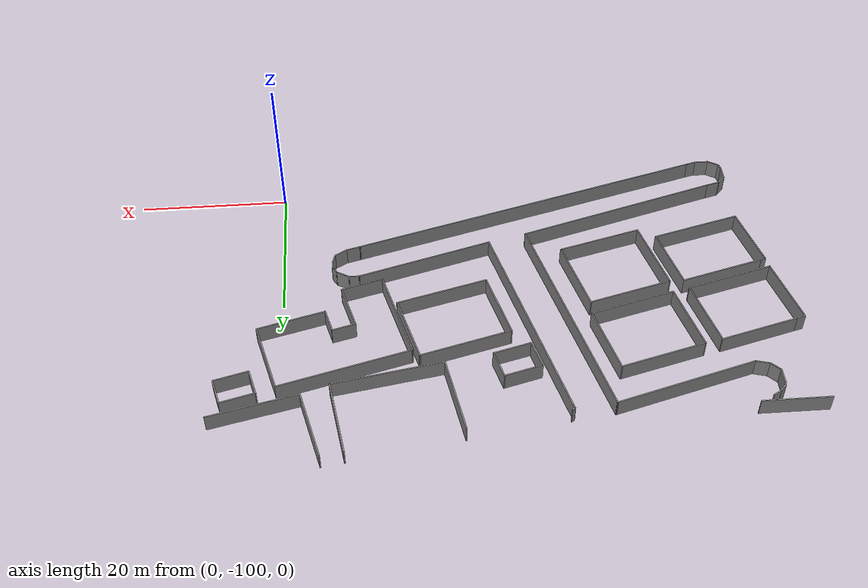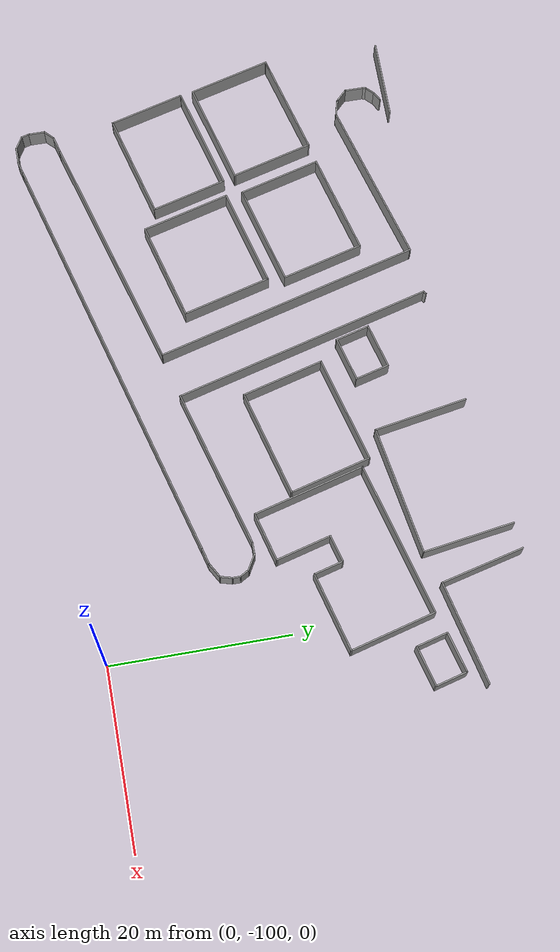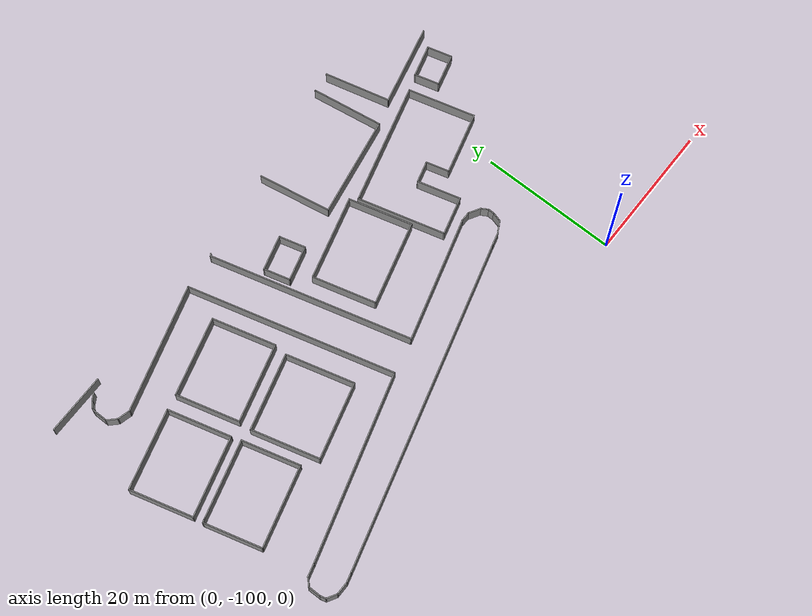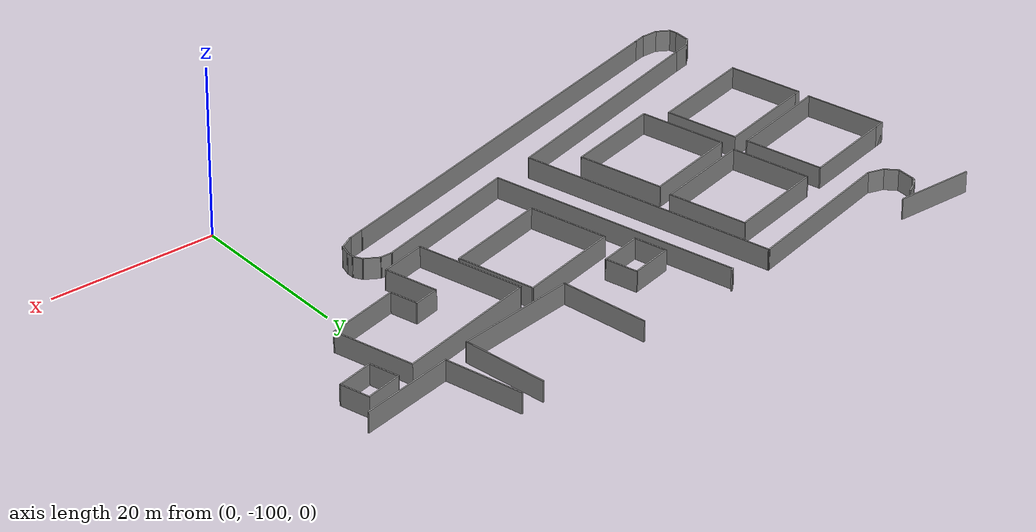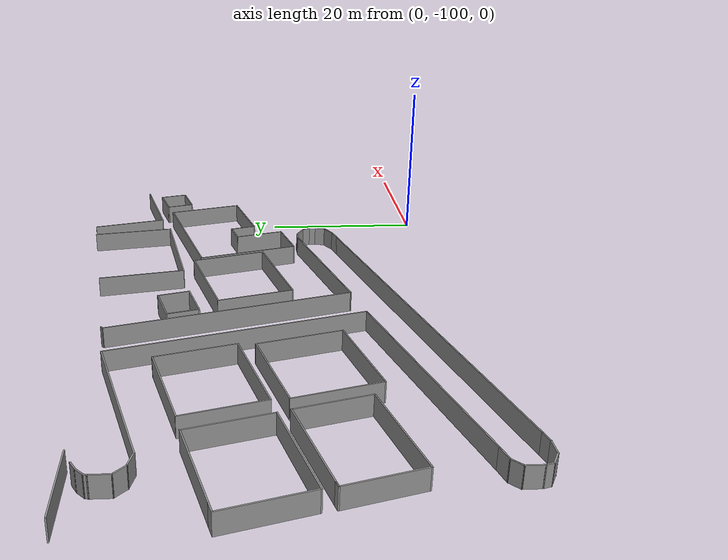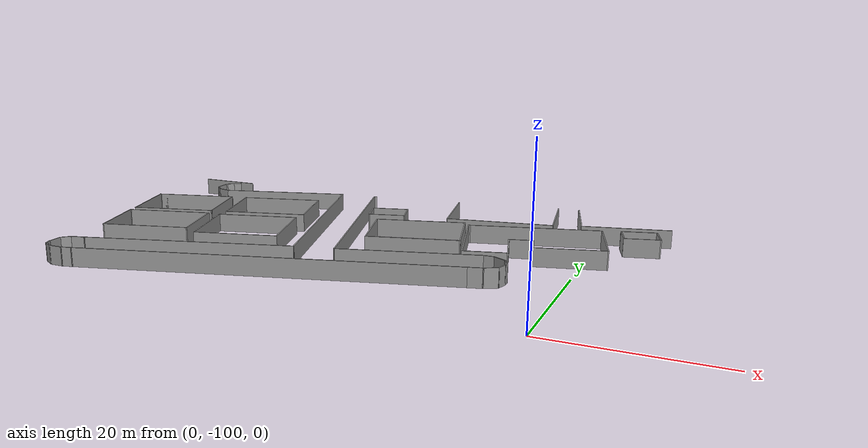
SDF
<sdf version="1.6">
 <model name="palazzo2">
  <pose>-3.81107 -3.99805 0 0 -0 0</pose>
  <link name="Wall_281">
   <collision name="Wall_281_Collision">
    <geometry><box><size>1.25 0.15 2.5</size></box></geometry>
    <pose>0 0 1.25 0 -0 0</pose>
   </collision>
   <visual name="Wall_281_Visual">
    <pose>0 0 1.25 0 -0 0</pose>
    <geometry><box><size>1.25 0.15 2.5</size></box></geometry>
    <material>
     <script><uri>file://media/materials/scripts/gazebo.material</uri><name>Gazebo/Grey</name></script>
     <ambient>1 1 1 1</ambient>
    </material>
    <meta><layer>0</layer></meta>
   </visual>
   <pose>-56.9081 -55.3846 0 0 -0 -2.61799</pose>
  </link>
  <link name="Wall_285">
   <collision name="Wall_285_Collision">
    <geometry><box><size>1.25 0.15 2.5</size></box></geometry>
    <pose>0 0 1.25 0 -0 0</pose>
   </collision>
   <visual name="Wall_285_Visual">
    <pose>0 0 1.25 0 -0 0</pose>
    <geometry><box><size>1.25 0.15 2.5</size></box></geometry>
    <material>
     <script><uri>file://media/materials/scripts/gazebo.material</uri><name>Gazebo/Grey</name></script>
     <ambient>1 1 1 1</ambient>
    </material>
    <meta><layer>0</layer></meta>
   </visual>
   <pose>-57.7733 -56.0485 0 0 -0 -2.35619</pose>
  </link>
  <link name="Wall_286">
   <collision name="Wall_286_Collision">
    <geometry><box><size>0.5 0.15 2.5</size></box></geometry>
    <pose>0 0 1.25 0 -0 0</pose>
   </collision>
   <visual name="Wall_286_Visual">
    <pose>0 0 1.25 0 -0 0</pose>
    <geometry><box><size>0.5 0.15 2.5</size></box></geometry>
    <material>
     <script><uri>file://media/materials/scripts/gazebo.material</uri><name>Gazebo/Grey</name></script>
     <ambient>1 1 1 1</ambient>
    </material>
    <meta><layer>0</layer></meta>
   </visual>
   <pose>-58.2075 -56.6064 0 0 -0 -1.8326</pose>
  </link>
  <link name="Wall_287">
   <collision name="Wall_287_Collision">
    <geometry><box><size>2.25 0.15 2.5</size></box></geometry>
    <pose>0 0 1.25 0 -0 0</pose>
   </collision>
   <visual name="Wall_287_Visual">
    <pose>0 0 1.25 0 -0 0</pose>
    <geometry><box><size>2.25 0.15 2.5</size></box></geometry>
    <material>
     <script><uri>file://media/materials/scripts/gazebo.material</uri><name>Gazebo/Grey</name></script>
     <ambient>1 1 1 1</ambient>
    </material>
    <meta><layer>0</layer></meta>
   </visual>
   <pose>-58.2528 -57.8255 0 0 -0 -1.5708</pose>
  </link>
  <link name="Wall_288">
   <collision name="Wall_288_Collision">
    <geometry><box><size>1.75 0.15 2.5</size></box></geometry>
    <pose>0 0 1.25 0 -0 0</pose>
   </collision>
   <visual name="Wall_288_Visual">
    <pose>0 0 1.25 0 -0 0</pose>
    <geometry><box><size>1.75 0.15 2.5</size></box></geometry>
    <material>
     <script><uri>file://media/materials/scripts/gazebo.material</uri><name>Gazebo/Grey</name></script>
     <ambient>1 1 1 1</ambient>
    </material>
    <meta><layer>0</layer></meta>
   </visual>
   <pose>-57.6871 -59.4412 0 0 -0 -0.785398</pose>
  </link>
  <link name="Wall_289">
   <collision name="Wall_289_Collision">
    <geometry><box><size>2 0.15 2.5</size></box></geometry>
    <pose>0 0 1.25 0 -0 0</pose>
   </collision>
   <visual name="Wall_289_Visual">
    <pose>0 0 1.25 0 -0 0</pose>
    <geometry><box><size>2 0.15 2.5</size></box></geometry>
    <material>
     <script><uri>file://media/materials/scripts/gazebo.material</uri><name>Gazebo/Grey</name></script>
     <ambient>1 1 1 1</ambient>
    </material>
    <meta><layer>0</layer></meta>
   </visual>
   <pose>-56.2279 -60.2463 0 0 -0 -0.261799</pose>
  </link>
  <link name="Wall_291">
   <collision name="Wall_291_Collision">
    <geometry><box><size>19.0767 0.15 2.5</size></box></geometry>
    <pose>0 0 1.25 0 -0 0</pose>
   </collision>
   <visual name="Wall_291_Visual">
    <pose>0 0 1.25 0 -0 0</pose>
    <geometry><box><size>19.0767 0.15 2.5</size></box></geometry>
    <material>
     <script><uri>file://media/materials/scripts/gazebo.material</uri><name>Gazebo/Grey</name></script>
     <ambient>1 1 1 1</ambient>
    </material>
    <meta><layer>0</layer></meta>
   </visual>
   <pose>-46.2271 -57.9145 0 0 -0 -2.86644</pose>
  </link>
  <link name="Wall_296">
   <collision name="Wall_296_Collision">
    <geometry><box><size>30.7325 0.15 2.5</size></box></geometry>
    <pose>0 0 1.25 0 -0 0</pose>
   </collision>
   <visual name="Wall_296_Visual">
    <pose>0 0 1.25 0 -0 0</pose>
    <geometry><box><size>30.7325 0.15 2.5</size></box></geometry>
    <material>
     <script><uri>file://media/materials/scripts/gazebo.material</uri><name>Gazebo/Grey</name></script>
     <ambient>1 1 1 1</ambient>
    </material>
    <meta><layer>0</layer></meta>
   </visual>
   <pose>-33.1704 -70.1158 0 0 -0 1.83203</pose>
  </link>
  <link name="Wall_298">
   <collision name="Wall_298_Collision">
    <geometry><box><size>30 0.15 2.5</size></box></geometry>
    <pose>0 0 1.25 0 -0 0</pose>
   </collision>
   <visual name="Wall_298_Visual">
    <pose>0 0 1.25 0 -0 0</pose>
    <geometry><box><size>30 0.15 2.5</size></box></geometry>
    <material>
     <script><uri>file://media/materials/scripts/gazebo.material</uri><name>Gazebo/Grey</name></script>
     <ambient>1 1 1 1</ambient>
    </material>
    <meta><layer>0</layer></meta>
   </visual>
   <pose>-27.9598 -69.2673 0 0 -0 1.8326</pose>
  </link>
  <link name="Wall_301">
   <collision name="Wall_301_Collision">
    <geometry><box><size>0.504493 0.15 2.5</size></box></geometry>
    <pose>0 0 1.25 0 -0 0</pose>
   </collision>
   <visual name="Wall_301_Visual">
    <pose>0 0 1.25 0 -0 0</pose>
    <geometry><box><size>0.504493 0.15 2.5</size></box></geometry>
    <material>
     <script><uri>file://media/materials/scripts/gazebo.material</uri><name>Gazebo/Grey</name></script>
     <ambient>1 1 1 1</ambient>
    </material>
    <meta><layer>0</layer></meta>
   </visual>
   <pose>-31.679 -54.747 0 0 -0 0.625919</pose>
  </link>
  <link name="Wall_303">
   <collision name="Wall_303_Collision">
    <geometry><box><size>18.6137 0.15 2.5</size></box></geometry>
    <pose>0 0 1.25 0 -0 0</pose>
   </collision>
   <visual name="Wall_303_Visual">
    <pose>0 0 1.25 0 -0 0</pose>
    <geometry><box><size>18.6137 0.15 2.5</size></box></geometry>
    <material>
     <script><uri>file://media/materials/scripts/gazebo.material</uri><name>Gazebo/Grey</name></script>
     <ambient>1 1 1 1</ambient>
    </material>
    <meta><layer>0</layer></meta>
   </visual>
   <pose>-15.215 -81.1661 0 0 -0 -2.86537</pose>
  </link>
  <link name="Wall_305">
   <collision name="Wall_305_Collision">
    <geometry><box><size>1.5 0.15 2.5</size></box></geometry>
    <pose>0 0 1.25 0 -0 0</pose>
   </collision>
   <visual name="Wall_305_Visual">
    <pose>0 0 1.25 0 -0 0</pose>
    <geometry><box><size>1.5 0.15 2.5</size></box></geometry>
    <material>
     <script><uri>file://media/materials/scripts/gazebo.material</uri><name>Gazebo/Grey</name></script>
     <ambient>1 1 1 1</ambient>
    </material>
    <meta><layer>0</layer></meta>
   </visual>
   <pose>-5.65811 -78.6484 0 0 -0 0</pose>
  </link>
  <link name="Wall_306">
   <collision name="Wall_306_Collision">
    <geometry><box><size>2 0.15 2.5</size></box></geometry>
    <pose>0 0 1.25 0 -0 0</pose>
   </collision>
   <visual name="Wall_306_Visual">
    <pose>0 0 1.25 0 -0 0</pose>
    <geometry><box><size>2 0.15 2.5</size></box></geometry>
    <material>
     <script><uri>file://media/materials/scripts/gazebo.material</uri><name>Gazebo/Grey</name></script>
     <ambient>1 1 1 1</ambient>
    </material>
    <meta><layer>0</layer></meta>
   </visual>
   <pose>-4.18204 -79.1109 0 0 -0 -0.523599</pose>
  </link>
  <link name="Wall_307">
   <collision name="Wall_307_Collision">
    <geometry><box><size>1.25 0.15 2.5</size></box></geometry>
    <pose>0 0 1.25 0 -0 0</pose>
   </collision>
   <visual name="Wall_307_Visual">
    <pose>0 0 1.25 0 -0 0</pose>
    <geometry><box><size>1.25 0.15 2.5</size></box></geometry>
    <material>
     <script><uri>file://media/materials/scripts/gazebo.material</uri><name>Gazebo/Grey</name></script>
     <ambient>1 1 1 1</ambient>
    </material>
    <meta><layer>0</layer></meta>
   </visual>
   <pose>-3.10596 -80.0497 0 0 -0 -1.0472</pose>
  </link>
  <link name="Wall_308">
   <collision name="Wall_308_Collision">
    <geometry><box><size>1 0.15 2.5</size></box></geometry>
    <pose>0 0 1.25 0 -0 0</pose>
   </collision>
   <visual name="Wall_308_Visual">
    <pose>0 0 1.25 0 -0 0</pose>
    <geometry><box><size>1 0.15 2.5</size></box></geometry>
    <material>
     <script><uri>file://media/materials/scripts/gazebo.material</uri><name>Gazebo/Grey</name></script>
     <ambient>1 1 1 1</ambient>
    </material>
    <meta><layer>0</layer></meta>
   </visual>
   <pose>-2.83096 -80.951 0 0 -0 -1.5708</pose>
  </link>
  <link name="Wall_309">
   <collision name="Wall_309_Collision">
    <geometry><box><size>1.5 0.15 2.5</size></box></geometry>
    <pose>0 0 1.25 0 -0 0</pose>
   </collision>
   <visual name="Wall_309_Visual">
    <pose>0 0 1.25 0 -0 0</pose>
    <geometry><box><size>1.5 0.15 2.5</size></box></geometry>
    <material>
     <script><uri>file://media/materials/scripts/gazebo.material</uri><name>Gazebo/Grey</name></script>
     <ambient>1 1 1 1</ambient>
    </material>
    <meta><layer>0</layer></meta>
   </visual>
   <pose>-3.00567 -82.028 0 0 -0 -1.8326</pose>
  </link>
  <link name="Wall_310">
   <collision name="Wall_310_Collision">
    <geometry><box><size>2 0.15 2.5</size></box></geometry>
    <pose>0 0 1.25 0 -0 0</pose>
   </collision>
   <visual name="Wall_310_Visual">
    <pose>0 0 1.25 0 -0 0</pose>
    <geometry><box><size>2 0.15 2.5</size></box></geometry>
    <material>
     <script><uri>file://media/materials/scripts/gazebo.material</uri><name>Gazebo/Grey</name></script>
     <ambient>1 1 1 1</ambient>
    </material>
    <meta><layer>0</layer></meta>
   </visual>
   <pose>-3.98144 -83.1425 0 0 -0 -2.61799</pose>
  </link>
  <link name="Wall_311">
   <collision name="Wall_311_Collision">
    <geometry><box><size>2 0.15 2.5</size></box></geometry>
    <pose>0 0 1.25 0 -0 0</pose>
   </collision>
   <visual name="Wall_311_Visual">
    <pose>0 0 1.25 0 -0 0</pose>
    <geometry><box><size>2 0.15 2.5</size></box></geometry>
    <material>
     <script><uri>file://media/materials/scripts/gazebo.material</uri><name>Gazebo/Grey</name></script>
     <ambient>1 1 1 1</ambient>
    </material>
    <meta><layer>0</layer></meta>
   </visual>
   <pose>-5.676 -83.8444 0 0 -0 -2.87979</pose>
  </link>
  <link name="Wall_313">
   <collision name="Wall_313_Collision">
    <geometry><box><size>49.427 0.15 2.5</size></box></geometry>
    <pose>0 0 1.25 0 -0 0</pose>
   </collision>
   <visual name="Wall_313_Visual">
    <pose>0 0 1.25 0 -0 0</pose>
    <geometry><box><size>49.427 0.15 2.5</size></box></geometry>
    <material>
     <script><uri>file://media/materials/scripts/gazebo.material</uri><name>Gazebo/Grey</name></script>
     <ambient>1 1 1 1</ambient>
    </material>
    <meta><layer>0</layer></meta>
   </visual>
   <pose>-30.3088 -90.6791 0 0 -0 0.270986</pose>
  </link>
  <link name="Wall_315">
   <collision name="Wall_315_Collision">
    <geometry><box><size>1.5 0.15 2.5</size></box></geometry>
    <pose>0 0 1.25 0 -0 0</pose>
   </collision>
   <visual name="Wall_315_Visual">
    <pose>0 0 1.25 0 -0 0</pose>
    <geometry><box><size>1.5 0.15 2.5</size></box></geometry>
    <material>
     <script><uri>file://media/materials/scripts/gazebo.material</uri><name>Gazebo/Grey</name></script>
     <ambient>1 1 1 1</ambient>
    </material>
    <meta><layer>0</layer></meta>
   </visual>
   <pose>-54.7002 -97.449 0 0 -0 -2.87979</pose>
  </link>
  <link name="Wall_316">
   <collision name="Wall_316_Collision">
    <geometry><box><size>2 0.15 2.5</size></box></geometry>
    <pose>0 0 1.25 0 -0 0</pose>
   </collision>
   <visual name="Wall_316_Visual">
    <pose>0 0 1.25 0 -0 0</pose>
    <geometry><box><size>2 0.15 2.5</size></box></geometry>
    <material>
     <script><uri>file://media/materials/scripts/gazebo.material</uri><name>Gazebo/Grey</name></script>
     <ambient>1 1 1 1</ambient>
    </material>
    <meta><layer>0</layer></meta>
   </visual>
   <pose>-56.2772 -97.6237 0 0 -0 3.14159</pose>
  </link>
  <link name="Wall_317">
   <collision name="Wall_317_Collision">
    <geometry><box><size>1.75 0.15 2.5</size></box></geometry>
    <pose>0 0 1.25 0 -0 0</pose>
   </collision>
   <visual name="Wall_317_Visual">
    <pose>0 0 1.25 0 -0 0</pose>
    <geometry><box><size>1.75 0.15 2.5</size></box></geometry>
    <material>
     <script><uri>file://media/materials/scripts/gazebo.material</uri><name>Gazebo/Grey</name></script>
     <ambient>1 1 1 1</ambient>
    </material>
    <meta><layer>0</layer></meta>
   </visual>
   <pose>-57.895 -97.2237 0 0 -0 2.61799</pose>
  </link>
  <link name="Wall_318">
   <collision name="Wall_318_Collision">
    <geometry><box><size>1 0.15 2.5</size></box></geometry>
    <pose>0 0 1.25 0 -0 0</pose>
   </collision>
   <visual name="Wall_318_Visual">
    <pose>0 0 1.25 0 -0 0</pose>
    <geometry><box><size>1 0.15 2.5</size></box></geometry>
    <material>
     <script><uri>file://media/materials/scripts/gazebo.material</uri><name>Gazebo/Grey</name></script>
     <ambient>1 1 1 1</ambient>
    </material>
    <meta><layer>0</layer></meta>
   </visual>
   <pose>-58.6978 -96.4132 0 0 -0 1.8326</pose>
  </link>
  <link name="Wall_319">
   <collision name="Wall_319_Collision">
    <geometry><box><size>2 0.15 2.5</size></box></geometry>
    <pose>0 0 1.25 0 -0 0</pose>
   </collision>
   <visual name="Wall_319_Visual">
    <pose>0 0 1.25 0 -0 0</pose>
    <geometry><box><size>2 0.15 2.5</size></box></geometry>
    <material>
     <script><uri>file://media/materials/scripts/gazebo.material</uri><name>Gazebo/Grey</name></script>
     <ambient>1 1 1 1</ambient>
    </material>
    <meta><layer>0</layer></meta>
   </visual>
   <pose>-58.8078 -95.0777 0 0 -0 1.5708</pose>
  </link>
  <link name="Wall_320">
   <collision name="Wall_320_Collision">
    <geometry><box><size>1.5 0.15 2.5</size></box></geometry>
    <pose>0 0 1.25 0 -0 0</pose>
   </collision>
   <visual name="Wall_320_Visual">
    <pose>0 0 1.25 0 -0 0</pose>
    <geometry><box><size>1.5 0.15 2.5</size></box></geometry>
    <material>
     <script><uri>file://media/materials/scripts/gazebo.material</uri><name>Gazebo/Grey</name></script>
     <ambient>1 1 1 1</ambient>
    </material>
    <meta><layer>0</layer></meta>
   </visual>
   <pose>-58.3305 -93.6754 0 0 -0 0.785398</pose>
  </link>
  <link name="Wall_321">
   <collision name="Wall_321_Collision">
    <geometry><box><size>2 0.15 2.5</size></box></geometry>
    <pose>0 0 1.25 0 -0 0</pose>
   </collision>
   <visual name="Wall_321_Visual">
    <pose>0 0 1.25 0 -0 0</pose>
    <geometry><box><size>2 0.15 2.5</size></box></geometry>
    <material>
     <script><uri>file://media/materials/scripts/gazebo.material</uri><name>Gazebo/Grey</name></script>
     <ambient>1 1 1 1</ambient>
    </material>
    <meta><layer>0</layer></meta>
   </visual>
   <pose>-56.9598 -92.9587 0 0 -0 0.261799</pose>
  </link>
  <link name="Wall_323">
   <collision name="Wall_323_Collision">
    <geometry><box><size>28.114 0.15 2.5</size></box></geometry>
    <pose>0 0 1.25 0 -0 0</pose>
   </collision>
   <visual name="Wall_323_Visual">
    <pose>0 0 1.25 0 -0 0</pose>
    <geometry><box><size>28.114 0.15 2.5</size></box></geometry>
    <material>
     <script><uri>file://media/materials/scripts/gazebo.material</uri><name>Gazebo/Grey</name></script>
     <ambient>1 1 1 1</ambient>
    </material>
    <meta><layer>0</layer></meta>
   </visual>
   <pose>-42.6437 -88.8037 0 0 -0 -2.85776</pose>
  </link>
  <link name="Wall_707">
   <collision name="Wall_707_Collision">
    <geometry><box><size>9 0.15 2.5</size></box></geometry>
    <pose>0 0 1.25 0 -0 0</pose>
   </collision>
   <visual name="Wall_707_Visual">
    <pose>0 0 1.25 0 -0 0</pose>
    <geometry><box><size>9 0.15 2.5</size></box></geometry>
    <material>
     <script><uri>file://media/materials/scripts/gazebo.material</uri><name>Gazebo/Grey</name></script>
     <ambient>1 1 1 1</ambient>
    </material>
    <meta><layer>0</layer></meta>
   </visual>
   <pose>-59.0934 -54.2813 0 0 -0 3.14159</pose>
  </link>
  <link name="Wall_713">
   <collision name="Wall_713_Collision">
    <geometry><box><size>5.25 0.15 2.5</size></box></geometry>
    <pose>0 0 1.25 0 -0 0</pose>
   </collision>
   <visual name="Wall_713_Visual">
    <pose>0 0 1.25 0 -0 0</pose>
    <geometry><box><size>5.25 0.15 2.5</size></box></geometry>
    <material>
     <script><uri>file://media/materials/scripts/gazebo.material</uri><name>Gazebo/Grey</name></script>
     <ambient>1 1 1 1</ambient>
    </material>
    <meta><layer>0</layer></meta>
   </visual>
   <pose>-26.2767 -61.1174 0 0 -0 0.261799</pose>
  </link>
  <link name="Wall_714">
   <collision name="Wall_714_Collision">
    <geometry><box><size>4 0.15 2.5</size></box></geometry>
    <pose>0 0 1.25 0 -0 0</pose>
   </collision>
   <visual name="Wall_714_Visual">
    <pose>0 0 1.25 0 -0 0</pose>
    <geometry><box><size>4 0.15 2.5</size></box></geometry>
    <material>
     <script><uri>file://media/materials/scripts/gazebo.material</uri><name>Gazebo/Grey</name></script>
     <ambient>1 1 1 1</ambient>
    </material>
    <meta><layer>0</layer></meta>
   </visual>
   <pose>-23.3153 -62.3168 0 0 -0 -1.309</pose>
  </link>
  <link name="Wall_715">
   <collision name="Wall_715_Collision">
    <geometry><box><size>5.25 0.15 2.5</size></box></geometry>
    <pose>0 0 1.25 0 -0 0</pose>
   </collision>
   <visual name="Wall_715_Visual">
    <pose>0 0 1.25 0 -0 0</pose>
    <geometry><box><size>5.25 0.15 2.5</size></box></geometry>
    <material>
     <script><uri>file://media/materials/scripts/gazebo.material</uri><name>Gazebo/Grey</name></script>
     <ambient>1 1 1 1</ambient>
    </material>
    <meta><layer>0</layer></meta>
   </visual>
   <pose>-25.2802 -64.8362 0 0 -0 -2.87979</pose>
  </link>
  <link name="Wall_716">
   <collision name="Wall_716_Collision">
    <geometry><box><size>4 0.15 2.5</size></box></geometry>
    <pose>0 0 1.25 0 -0 0</pose>
   </collision>
   <visual name="Wall_716_Visual">
    <pose>0 0 1.25 0 -0 0</pose>
    <geometry><box><size>4 0.15 2.5</size></box></geometry>
    <material>
     <script><uri>file://media/materials/scripts/gazebo.material</uri><name>Gazebo/Grey</name></script>
     <ambient>1 1 1 1</ambient>
    </material>
    <meta><layer>0</layer></meta>
   </visual>
   <pose>-28.2415 -63.6368 0 0 -0 1.8326</pose>
  </link>
  <link name="Wall_723">
   <collision name="Wall_723_Collision">
    <geometry><box><size>10.7148 0.15 2.5</size></box></geometry>
    <pose>0 0 1.25 0 -0 0</pose>
   </collision>
   <visual name="Wall_723_Visual">
    <pose>0 0 1.25 0 -0 0</pose>
    <geometry><box><size>10.7148 0.15 2.5</size></box></geometry>
    <material>
     <script><uri>file://media/materials/scripts/gazebo.material</uri><name>Gazebo/Grey</name></script>
     <ambient>1 1 1 1</ambient>
    </material>
    <meta><layer>0</layer></meta>
   </visual>
   <pose>-17.547 -58.0245 0 0 -0 1.74619</pose>
  </link>
  <link name="Wall_725">
   <collision name="Wall_725_Collision">
    <geometry><box><size>10.4638 0.15 2.5</size></box></geometry>
    <pose>0 0 1.25 0 -0 0</pose>
   </collision>
   <visual name="Wall_725_Visual">
    <pose>0 0 1.25 0 -0 0</pose>
    <geometry><box><size>10.4638 0.15 2.5</size></box></geometry>
    <material>
     <script><uri>file://media/materials/scripts/gazebo.material</uri><name>Gazebo/Grey</name></script>
     <ambient>1 1 1 1</ambient>
    </material>
    <meta><layer>0</layer></meta>
   </visual>
   <pose>-2.98318 -55.6542 0 0 -0 1.72461</pose>
  </link>
  <link name="Wall_727">
   <collision name="Wall_727_Collision">
    <geometry><box><size>14.7929 0.15 2.5</size></box></geometry>
    <pose>0 0 1.25 0 -0 0</pose>
   </collision>
   <visual name="Wall_727_Visual">
    <pose>0 0 1.25 0 -0 0</pose>
    <geometry><box><size>14.7929 0.15 2.5</size></box></geometry>
    <material>
     <script><uri>file://media/materials/scripts/gazebo.material</uri><name>Gazebo/Grey</name></script>
     <ambient>1 1 1 1</ambient>
    </material>
    <meta><layer>0</layer></meta>
   </visual>
   <pose>-9.40916 -61.988 0 0 -0 0.16988</pose>
  </link>
  <link name="Wall_733">
   <collision name="Wall_733_Collision">
    <geometry><box><size>9.67365 0.15 2.5</size></box></geometry>
    <pose>0 0 1.25 0 -0 0</pose>
   </collision>
   <visual name="Wall_733_Visual">
    <pose>0 0 1.25 0 -0 0</pose>
    <geometry><box><size>9.67365 0.15 2.5</size></box></geometry>
    <material>
     <script><uri>file://media/materials/scripts/gazebo.material</uri><name>Gazebo/Grey</name></script>
     <ambient>1 1 1 1</ambient>
    </material>
    <meta><layer>0</layer></meta>
   </visual>
   <pose>0.295652 -54.8378 0 0 -0 1.81376</pose>
  </link>
  <link name="Wall_737">
   <collision name="Wall_737_Collision">
    <geometry><box><size>11.9169 0.15 2.5</size></box></geometry>
    <pose>0 0 1.25 0 -0 0</pose>
   </collision>
   <visual name="Wall_737_Visual">
    <pose>0 0 1.25 0 -0 0</pose>
    <geometry><box><size>11.9169 0.15 2.5</size></box></geometry>
    <material>
     <script><uri>file://media/materials/scripts/gazebo.material</uri><name>Gazebo/Grey</name></script>
     <ambient>1 1 1 1</ambient>
    </material>
    <meta><layer>0</layer></meta>
   </visual>
   <pose>7.16934 -58.1167 0 0 -0 0.230322</pose>
  </link>
  <link name="Wall_739">
   <collision name="Wall_739_Collision">
    <geometry><box><size>4.75 0.15 2.5</size></box></geometry>
    <pose>0 0 1.25 0 -0 0</pose>
   </collision>
   <visual name="Wall_739_Visual">
    <pose>0 0 1.25 0 -0 0</pose>
    <geometry><box><size>4.75 0.15 2.5</size></box></geometry>
    <material>
     <script><uri>file://media/materials/scripts/gazebo.material</uri><name>Gazebo/Grey</name></script>
     <ambient>1 1 1 1</ambient>
    </material>
    <meta><layer>0</layer></meta>
   </visual>
   <pose>9.06177 -59.4176 0 0 -0 0.261799</pose>
  </link>
  <link name="Wall_740">
   <collision name="Wall_740_Collision">
    <geometry><box><size>3.75 0.15 2.5</size></box></geometry>
    <pose>0 0 1.25 0 -0 0</pose>
   </collision>
   <visual name="Wall_740_Visual">
    <pose>0 0 1.25 0 -0 0</pose>
    <geometry><box><size>3.75 0.15 2.5</size></box></geometry>
    <material>
     <script><uri>file://media/materials/scripts/gazebo.material</uri><name>Gazebo/Grey</name></script>
     <ambient>1 1 1 1</ambient>
    </material>
    <meta><layer>0</layer></meta>
   </visual>
   <pose>11.7493 -60.561 0 0 -0 -1.309</pose>
  </link>
  <link name="Wall_741">
   <collision name="Wall_741_Collision">
    <geometry><box><size>4.75 0.15 2.5</size></box></geometry>
    <pose>0 0 1.25 0 -0 0</pose>
   </collision>
   <visual name="Wall_741_Visual">
    <pose>0 0 1.25 0 -0 0</pose>
    <geometry><box><size>4.75 0.15 2.5</size></box></geometry>
    <material>
     <script><uri>file://media/materials/scripts/gazebo.material</uri><name>Gazebo/Grey</name></script>
     <ambient>1 1 1 1</ambient>
    </material>
    <meta><layer>0</layer></meta>
   </visual>
   <pose>9.99352 -62.8949 0 0 -0 -2.87979</pose>
  </link>
  <link name="Wall_742">
   <collision name="Wall_742_Collision">
    <geometry><box><size>3.75 0.15 2.5</size></box></geometry>
    <pose>0 0 1.25 0 -0 0</pose>
   </collision>
   <visual name="Wall_742_Visual">
    <pose>0 0 1.25 0 -0 0</pose>
    <geometry><box><size>3.75 0.15 2.5</size></box></geometry>
    <material>
     <script><uri>file://media/materials/scripts/gazebo.material</uri><name>Gazebo/Grey</name></script>
     <ambient>1 1 1 1</ambient>
    </material>
    <meta><layer>0</layer></meta>
   </visual>
   <pose>7.30602 -61.7515 0 0 -0 1.8326</pose>
  </link>
  <link name="Wall_744">
   <collision name="Wall_744_Collision">
    <geometry><box><size>12.5 0.15 2.5</size></box></geometry>
    <pose>0 0 1.25 0 -0 0</pose>
   </collision>
   <visual name="Wall_744_Visual">
    <pose>0 0 1.25 0 -0 0</pose>
    <geometry><box><size>12.5 0.15 2.5</size></box></geometry>
    <material>
     <script><uri>file://media/materials/scripts/gazebo.material</uri><name>Gazebo/Grey</name></script>
     <ambient>1 1 1 1</ambient>
    </material>
    <meta><layer>0</layer></meta>
   </visual>
   <pose>-19.5251 -66.0968 0 0 -0 0.261799</pose>
  </link>
  <link name="Wall_745">
   <collision name="Wall_745_Collision">
    <geometry><box><size>9.5 0.15 2.5</size></box></geometry>
    <pose>0 0 1.25 0 -0 0</pose>
   </collision>
   <visual name="Wall_745_Visual">
    <pose>0 0 1.25 0 -0 0</pose>
    <geometry><box><size>9.5 0.15 2.5</size></box></geometry>
    <material>
     <script><uri>file://media/materials/scripts/gazebo.material</uri><name>Gazebo/Grey</name></script>
     <ambient>1 1 1 1</ambient>
    </material>
    <meta><layer>0</layer></meta>
   </visual>
   <pose>-12.3506 -69.0143 0 0 -0 -1.309</pose>
  </link>
  <link name="Wall_746">
   <collision name="Wall_746_Collision">
    <geometry><box><size>12.5 0.15 2.5</size></box></geometry>
    <pose>0 0 1.25 0 -0 0</pose>
   </collision>
   <visual name="Wall_746_Visual">
    <pose>0 0 1.25 0 -0 0</pose>
    <geometry><box><size>12.5 0.15 2.5</size></box></geometry>
    <material>
     <script><uri>file://media/materials/scripts/gazebo.material</uri><name>Gazebo/Grey</name></script>
     <ambient>1 1 1 1</ambient>
    </material>
    <meta><layer>0</layer></meta>
   </visual>
   <pose>-17.1052 -75.1282 0 0 -0 -2.87979</pose>
  </link>
  <link name="Wall_747">
   <collision name="Wall_747_Collision">
    <geometry><box><size>9.5 0.15 2.5</size></box></geometry>
    <pose>0 0 1.25 0 -0 0</pose>
   </collision>
   <visual name="Wall_747_Visual">
    <pose>0 0 1.25 0 -0 0</pose>
    <geometry><box><size>9.5 0.15 2.5</size></box></geometry>
    <material>
     <script><uri>file://media/materials/scripts/gazebo.material</uri><name>Gazebo/Grey</name></script>
     <ambient>1 1 1 1</ambient>
    </material>
    <meta><layer>0</layer></meta>
   </visual>
   <pose>-24.2797 -72.2107 0 0 -0 1.8326</pose>
  </link>
  <link name="Wall_749">
   <collision name="Wall_749_Collision">
    <geometry><box><size>17.75 0.15 2.5</size></box></geometry>
    <pose>0 0 1.25 0 -0 0</pose>
   </collision>
   <visual name="Wall_749_Visual">
    <pose>0 0 1.25 0 -0 0</pose>
    <geometry><box><size>17.75 0.15 2.5</size></box></geometry>
    <material>
     <script><uri>file://media/materials/scripts/gazebo.material</uri><name>Gazebo/Grey</name></script>
     <ambient>1 1 1 1</ambient>
    </material>
    <meta><layer>0</layer></meta>
   </visual>
   <pose>-4.027 -63.1157 0 0 -0 0.261799</pose>
  </link>
  <link name="Wall_750">
   <collision name="Wall_750_Collision">
    <geometry><box><size>10 0.15 2.5</size></box></geometry>
    <pose>0 0 1.25 0 -0 0</pose>
   </collision>
   <visual name="Wall_750_Visual">
    <pose>0 0 1.25 0 -0 0</pose>
    <geometry><box><size>10 0.15 2.5</size></box></geometry>
    <material>
     <script><uri>file://media/materials/scripts/gazebo.material</uri><name>Gazebo/Grey</name></script>
     <ambient>1 1 1 1</ambient>
    </material>
    <meta><layer>0</layer></meta>
   </visual>
   <pose>5.74783 -65.5953 0 0 -0 -1.309</pose>
  </link>
  <link name="Wall_751">
   <collision name="Wall_751_Collision">
    <geometry><box><size>9.25 0.15 2.5</size></box></geometry>
    <pose>0 0 1.25 0 -0 0</pose>
   </collision>
   <visual name="Wall_751_Visual">
    <pose>0 0 1.25 0 -0 0</pose>
    <geometry><box><size>9.25 0.15 2.5</size></box></geometry>
    <material>
     <script><uri>file://media/materials/scripts/gazebo.material</uri><name>Gazebo/Grey</name></script>
     <ambient>1 1 1 1</ambient>
    </material>
    <meta><layer>0</layer></meta>
   </visual>
   <pose>2.62755 -71.5301 0 0 -0 -2.87979</pose>
  </link>
  <link name="Wall_752">
   <collision name="Wall_752_Collision">
    <geometry><box><size>3.5 0.15 2.5</size></box></geometry>
    <pose>0 0 1.25 0 -0 0</pose>
   </collision>
   <visual name="Wall_752_Visual">
    <pose>0 0 1.25 0 -0 0</pose>
    <geometry><box><size>3.5 0.15 2.5</size></box></geometry>
    <material>
     <script><uri>file://media/materials/scripts/gazebo.material</uri><name>Gazebo/Grey</name></script>
     <ambient>1 1 1 1</ambient>
    </material>
    <meta><layer>0</layer></meta>
   </visual>
   <pose>-2.20094 -71.0898 0 0 -0 1.8326</pose>
  </link>
  <link name="Wall_753">
   <collision name="Wall_753_Collision">
    <geometry><box><size>3.25 0.15 2.5</size></box></geometry>
    <pose>0 0 1.25 0 -0 0</pose>
   </collision>
   <visual name="Wall_753_Visual">
    <pose>0 0 1.25 0 -0 0</pose>
    <geometry><box><size>3.25 0.15 2.5</size></box></geometry>
    <material>
     <script><uri>file://media/materials/scripts/gazebo.material</uri><name>Gazebo/Grey</name></script>
     <ambient>1 1 1 1</ambient>
    </material>
    <meta><layer>0</layer></meta>
   </visual>
   <pose>-4.13164 -69.873 0 0 -0 -2.87979</pose>
  </link>
  <link name="Wall_754">
   <collision name="Wall_754_Collision">
    <geometry><box><size>6.5 0.15 2.5</size></box></geometry>
    <pose>0 0 1.25 0 -0 0</pose>
   </collision>
   <visual name="Wall_754_Visual">
    <pose>0 0 1.25 0 -0 0</pose>
    <geometry><box><size>6.5 0.15 2.5</size></box></geometry>
    <material>
     <script><uri>file://media/materials/scripts/gazebo.material</uri><name>Gazebo/Grey</name></script>
     <ambient>1 1 1 1</ambient>
    </material>
    <meta><layer>0</layer></meta>
   </visual>
   <pose>-4.80708 -73.341 0 0 -0 -1.309</pose>
  </link>
  <link name="Wall_755">
   <collision name="Wall_755_Collision">
    <geometry><box><size>5.75 0.15 2.5</size></box></geometry>
    <pose>0 0 1.25 0 -0 0</pose>
   </collision>
   <visual name="Wall_755_Visual">
    <pose>0 0 1.25 0 -0 0</pose>
    <geometry><box><size>5.75 0.15 2.5</size></box></geometry>
    <material>
     <script><uri>file://media/materials/scripts/gazebo.material</uri><name>Gazebo/Grey</name></script>
     <ambient>1 1 1 1</ambient>
    </material>
    <meta><layer>0</layer></meta>
   </visual>
   <pose>-6.68992 -77.1325 0 0 -0 -2.87979</pose>
  </link>
  <link name="Wall_756">
   <collision name="Wall_756_Collision">
    <geometry><box><size>13 0.15 2.5</size></box></geometry>
    <pose>0 0 1.25 0 -0 0</pose>
   </collision>
   <visual name="Wall_756_Visual">
    <pose>0 0 1.25 0 -0 0</pose>
    <geometry><box><size>13 0.15 2.5</size></box></geometry>
    <material>
     <script><uri>file://media/materials/scripts/gazebo.material</uri><name>Gazebo/Grey</name></script>
     <ambient>1 1 1 1</ambient>
    </material>
    <meta><layer>0</layer></meta>
   </visual>
   <pose>-11.0574 -71.6511 0 0 -0 1.8326</pose>
  </link>
  <link name="Wall_757">
   <collision name="Wall_757_Collision">
    <geometry><box><size>0.35 0.15 2.5</size></box></geometry>
    <pose>0 0 1.25 0 -0 0</pose>
   </collision>
   <visual name="Wall_757_Visual">
    <pose>0 0 1.25 0 -0 0</pose>
    <geometry><box><size>0.35 0.15 2.5</size></box></geometry>
    <material>
     <script><uri>file://media/materials/scripts/gazebo.material</uri><name>Gazebo/Grey</name></script>
     <ambient>1 1 1 1</ambient>
    </material>
    <meta><layer>0</layer></meta>
   </visual>
   <pose>-12.6237 -65.4192 0 0 -0 0.261799</pose>
  </link>
  <link name="Wall_759">
   <collision name="Wall_759_Collision">
    <geometry><box><size>11.75 0.15 2.5</size></box></geometry>
    <pose>0 0 1.25 0 -0 0</pose>
   </collision>
   <visual name="Wall_759_Visual">
    <pose>0 0 1.25 0 -0 0</pose>
    <geometry><box><size>11.75 0.15 2.5</size></box></geometry>
    <material>
     <script><uri>file://media/materials/scripts/gazebo.material</uri><name>Gazebo/Grey</name></script>
     <ambient>1 1 1 1</ambient>
    </material>
    <meta><layer>0</layer></meta>
   </visual>
   <pose>-57.6485 -65.8319 0 0 -0 0.261799</pose>
  </link>
  <link name="Wall_760">
   <collision name="Wall_760_Collision">
    <geometry><box><size>9.5 0.15 2.5</size></box></geometry>
    <pose>0 0 1.25 0 -0 0</pose>
   </collision>
   <visual name="Wall_760_Visual">
    <pose>0 0 1.25 0 -0 0</pose>
    <geometry><box><size>9.5 0.15 2.5</size></box></geometry>
    <material>
     <script><uri>file://media/materials/scripts/gazebo.material</uri><name>Gazebo/Grey</name></script>
     <ambient>1 1 1 1</ambient>
    </material>
    <meta><layer>0</layer></meta>
   </visual>
   <pose>-50.8362 -68.8465 0 0 -0 -1.309</pose>
  </link>
  <link name="Wall_761">
   <collision name="Wall_761_Collision">
    <geometry><box><size>12 0.15 2.5</size></box></geometry>
    <pose>0 0 1.25 0 -0 0</pose>
   </collision>
   <visual name="Wall_761_Visual">
    <pose>0 0 1.25 0 -0 0</pose>
    <geometry><box><size>12 0.15 2.5</size></box></geometry>
    <material>
     <script><uri>file://media/materials/scripts/gazebo.material</uri><name>Gazebo/Grey</name></script>
     <ambient>1 1 1 1</ambient>
    </material>
    <meta><layer>0</layer></meta>
   </visual>
   <pose>-55.3493 -74.8957 0 0 -0 -2.87979</pose>
  </link>
  <link name="Wall_762">
   <collision name="Wall_762_Collision">
    <geometry><box><size>9.5 0.15 2.5</size></box></geometry>
    <pose>0 0 1.25 0 -0 0</pose>
   </collision>
   <visual name="Wall_762_Visual">
    <pose>0 0 1.25 0 -0 0</pose>
    <geometry><box><size>9.5 0.15 2.5</size></box></geometry>
    <material>
     <script><uri>file://media/materials/scripts/gazebo.material</uri><name>Gazebo/Grey</name></script>
     <ambient>1 1 1 1</ambient>
    </material>
    <meta><layer>0</layer></meta>
   </visual>
   <pose>-62.2824 -71.9135 0 0 -0 1.8326</pose>
  </link>
  <link name="Wall_763">
   <collision name="Wall_763_Collision">
    <geometry><box><size>1.25 0.15 2.5</size></box></geometry>
    <pose>0 0 1.25 0 -0 0</pose>
   </collision>
   <visual name="Wall_763_Visual">
    <pose>0 0 1.25 0 -0 0</pose>
    <geometry><box><size>1.25 0.15 2.5</size></box></geometry>
    <material>
     <script><uri>file://media/materials/scripts/gazebo.material</uri><name>Gazebo/Grey</name></script>
     <ambient>1 1 1 1</ambient>
    </material>
    <meta><layer>0</layer></meta>
   </visual>
   <pose>-62.9611 -67.2554 0 0 -0 0.261799</pose>
  </link>
  <link name="Wall_765">
   <collision name="Wall_765_Collision">
    <geometry><box><size>11.75 0.15 2.5</size></box></geometry>
    <pose>0 0 1.25 0 -0 0</pose>
   </collision>
   <visual name="Wall_765_Visual">
    <pose>0 0 1.25 0 -0 0</pose>
    <geometry><box><size>11.75 0.15 2.5</size></box></geometry>
    <material>
     <script><uri>file://media/materials/scripts/gazebo.material</uri><name>Gazebo/Grey</name></script>
     <ambient>1 1 1 1</ambient>
    </material>
    <meta><layer>0</layer></meta>
   </visual>
   <pose>-44.1696 -62.349 0 0 -0 0.261799</pose>
  </link>
  <link name="Wall_766">
   <collision name="Wall_766_Collision">
    <geometry><box><size>9.5 0.15 2.5</size></box></geometry>
    <pose>0 0 1.25 0 -0 0</pose>
   </collision>
   <visual name="Wall_766_Visual">
    <pose>0 0 1.25 0 -0 0</pose>
    <geometry><box><size>9.5 0.15 2.5</size></box></geometry>
    <material>
     <script><uri>file://media/materials/scripts/gazebo.material</uri><name>Gazebo/Grey</name></script>
     <ambient>1 1 1 1</ambient>
    </material>
    <meta><layer>0</layer></meta>
   </visual>
   <pose>-37.3572 -65.3635 0 0 -0 -1.309</pose>
  </link>
  <link name="Wall_767">
   <collision name="Wall_767_Collision">
    <geometry><box><size>11.75 0.15 2.5</size></box></geometry>
    <pose>0 0 1.25 0 -0 0</pose>
   </collision>
   <visual name="Wall_767_Visual">
    <pose>0 0 1.25 0 -0 0</pose>
    <geometry><box><size>11.75 0.15 2.5</size></box></geometry>
    <material>
     <script><uri>file://media/materials/scripts/gazebo.material</uri><name>Gazebo/Grey</name></script>
     <ambient>1 1 1 1</ambient>
    </material>
    <meta><layer>0</layer></meta>
   </visual>
   <pose>-41.7496 -71.3804 0 0 -0 -2.87979</pose>
  </link>
  <link name="Wall_768">
   <collision name="Wall_768_Collision">
    <geometry><box><size>9.5 0.15 2.5</size></box></geometry>
    <pose>0 0 1.25 0 -0 0</pose>
   </collision>
   <visual name="Wall_768_Visual">
    <pose>0 0 1.25 0 -0 0</pose>
    <geometry><box><size>9.5 0.15 2.5</size></box></geometry>
    <material>
     <script><uri>file://media/materials/scripts/gazebo.material</uri><name>Gazebo/Grey</name></script>
     <ambient>1 1 1 1</ambient>
    </material>
    <meta><layer>0</layer></meta>
   </visual>
   <pose>-48.562 -68.3658 0 0 -0 1.8326</pose>
  </link>
  <link name="Wall_770">
   <collision name="Wall_770_Collision">
    <geometry><box><size>12 0.15 2.5</size></box></geometry>
    <pose>0 0 1.25 0 -0 0</pose>
   </collision>
   <visual name="Wall_770_Visual">
    <pose>0 0 1.25 0 -0 0</pose>
    <geometry><box><size>12 0.15 2.5</size></box></geometry>
    <material>
     <script><uri>file://media/materials/scripts/gazebo.material</uri><name>Gazebo/Grey</name></script>
     <ambient>1 1 1 1</ambient>
    </material>
    <meta><layer>0</layer></meta>
   </visual>
   <pose>-54.8808 -76.2832 0 0 -0 0.261799</pose>
  </link>
  <link name="Wall_771">
   <collision name="Wall_771_Collision">
    <geometry><box><size>8.75 0.15 2.5</size></box></geometry>
    <pose>0 0 1.25 0 -0 0</pose>
   </collision>
   <visual name="Wall_771_Visual">
    <pose>0 0 1.25 0 -0 0</pose>
    <geometry><box><size>8.75 0.15 2.5</size></box></geometry>
    <material>
     <script><uri>file://media/materials/scripts/gazebo.material</uri><name>Gazebo/Grey</name></script>
     <ambient>1 1 1 1</ambient>
    </material>
    <meta><layer>0</layer></meta>
   </visual>
   <pose>-48.0447 -78.9032 0 0 -0 -1.309</pose>
  </link>
  <link name="Wall_772">
   <collision name="Wall_772_Collision">
    <geometry><box><size>12.25 0.15 2.5</size></box></geometry>
    <pose>0 0 1.25 0 -0 0</pose>
   </collision>
   <visual name="Wall_772_Visual">
    <pose>0 0 1.25 0 -0 0</pose>
    <geometry><box><size>12.25 0.15 2.5</size></box></geometry>
    <material>
     <script><uri>file://media/materials/scripts/gazebo.material</uri><name>Gazebo/Grey</name></script>
     <ambient>1 1 1 1</ambient>
    </material>
    <meta><layer>0</layer></meta>
   </visual>
   <pose>-52.7757 -84.6225 0 0 -0 -2.87979</pose>
  </link>
  <link name="Wall_773">
   <collision name="Wall_773_Collision">
    <geometry><box><size>8.75 0.15 2.5</size></box></geometry>
    <pose>0 0 1.25 0 -0 0</pose>
   </collision>
   <visual name="Wall_773_Visual">
    <pose>0 0 1.25 0 -0 0</pose>
    <geometry><box><size>8.75 0.15 2.5</size></box></geometry>
    <material>
     <script><uri>file://media/materials/scripts/gazebo.material</uri><name>Gazebo/Grey</name></script>
     <ambient>1 1 1 1</ambient>
    </material>
    <meta><layer>0</layer></meta>
   </visual>
   <pose>-59.7324 -82.0349 0 0 -0 1.8326</pose>
  </link>
  <link name="Wall_774">
   <collision name="Wall_774_Collision">
    <geometry><box><size>0.75 0.15 2.5</size></box></geometry>
    <pose>0 0 1.25 0 -0 0</pose>
   </collision>
   <visual name="Wall_774_Visual">
    <pose>0 0 1.25 0 -0 0</pose>
    <geometry><box><size>0.75 0.15 2.5</size></box></geometry>
    <material>
     <script><uri>file://media/materials/scripts/gazebo.material</uri><name>Gazebo/Grey</name></script>
     <ambient>1 1 1 1</ambient>
    </material>
    <meta><layer>0</layer></meta>
   </visual>
   <pose>-60.5556 -77.8037 0 0 -0 0.261799</pose>
  </link>
  <link name="Wall_776">
   <collision name="Wall_776_Collision">
    <geometry><box><size>11.5 0.15 2.5</size></box></geometry>
    <pose>0 0 1.25 0 -0 0</pose>
   </collision>
   <visual name="Wall_776_Visual">
    <pose>0 0 1.25 0 -0 0</pose>
    <geometry><box><size>11.5 0.15 2.5</size></box></geometry>
    <material>
     <script><uri>file://media/materials/scripts/gazebo.material</uri><name>Gazebo/Grey</name></script>
     <ambient>1 1 1 1</ambient>
    </material>
    <meta><layer>0</layer></meta>
   </visual>
   <pose>-41.7826 -73.2829 0 0 -0 0.261799</pose>
  </link>
  <link name="Wall_777">
   <collision name="Wall_777_Collision">
    <geometry><box><size>10.25 0.15 2.5</size></box></geometry>
    <pose>0 0 1.25 0 -0 0</pose>
   </collision>
   <visual name="Wall_777_Visual">
    <pose>0 0 1.25 0 -0 0</pose>
    <geometry><box><size>10.25 0.15 2.5</size></box></geometry>
    <material>
     <script><uri>file://media/materials/scripts/gazebo.material</uri><name>Gazebo/Grey</name></script>
     <ambient>1 1 1 1</ambient>
    </material>
    <meta><layer>0</layer></meta>
   </visual>
   <pose>-34.9939 -76.692 0 0 -0 -1.309</pose>
  </link>
  <link name="Wall_778">
   <collision name="Wall_778_Collision">
    <geometry><box><size>11.5 0.15 2.5</size></box></geometry>
    <pose>0 0 1.25 0 -0 0</pose>
   </collision>
   <visual name="Wall_778_Visual">
    <pose>0 0 1.25 0 -0 0</pose>
    <geometry><box><size>11.5 0.15 2.5</size></box></geometry>
    <material>
     <script><uri>file://media/materials/scripts/gazebo.material</uri><name>Gazebo/Grey</name></script>
     <ambient>1 1 1 1</ambient>
    </material>
    <meta><layer>0</layer></meta>
   </visual>
   <pose>-39.1685 -83.0388 0 0 -0 -2.87979</pose>
  </link>
  <link name="Wall_779">
   <collision name="Wall_779_Collision">
    <geometry><box><size>10.25 0.15 2.5</size></box></geometry>
    <pose>0 0 1.25 0 -0 0</pose>
   </collision>
   <visual name="Wall_779_Visual">
    <pose>0 0 1.25 0 -0 0</pose>
    <geometry><box><size>10.25 0.15 2.5</size></box></geometry>
    <material>
     <script><uri>file://media/materials/scripts/gazebo.material</uri><name>Gazebo/Grey</name></script>
     <ambient>1 1 1 1</ambient>
    </material>
    <meta><layer>0</layer></meta>
   </visual>
   <pose>-45.9572 -79.6296 0 0 -0 1.8326</pose>
  </link>
  <static>1</static>
 </model>
</sdf>
